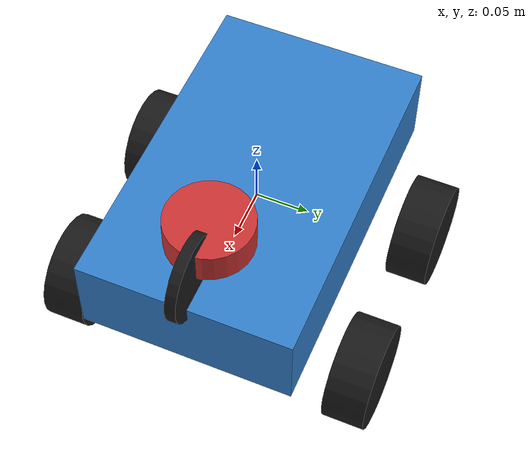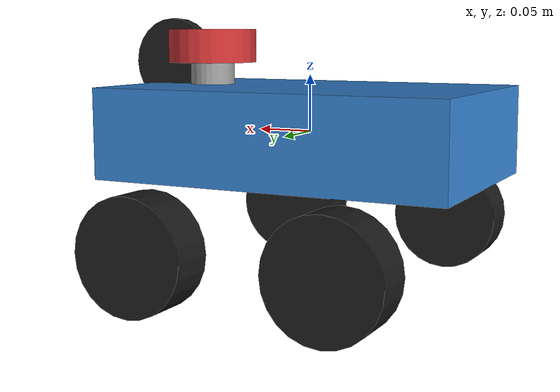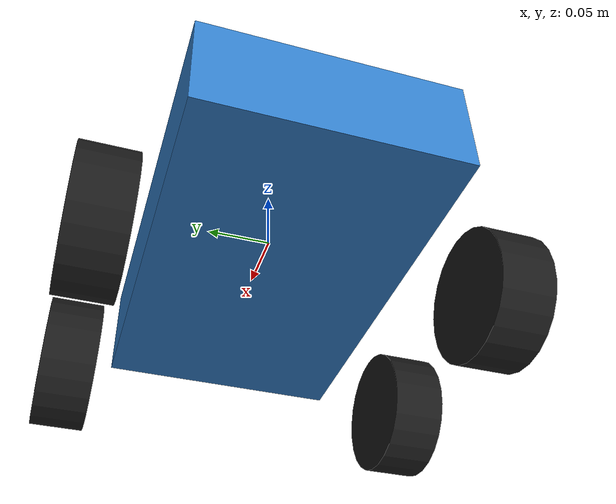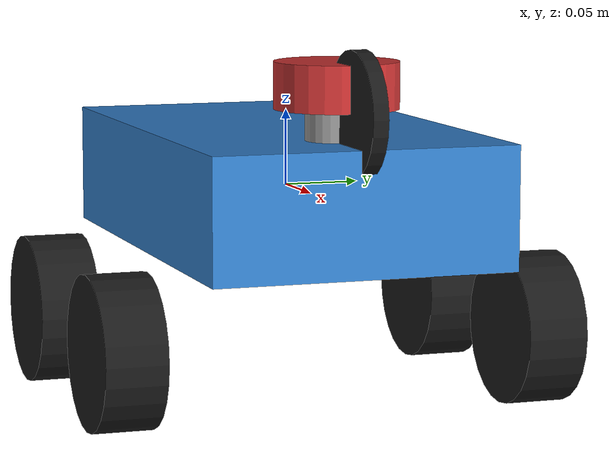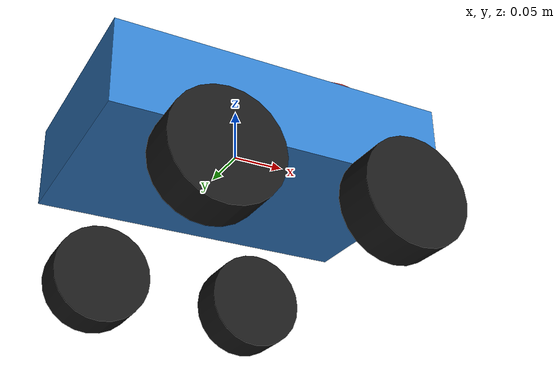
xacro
<?xml version="1.0" ?>
<robot xmlns:xacro="http://www.ros.org/wiki/xacro" name="ros_car">

  <xacro:property name="use_sim" value="true"/>

  <!-- ======== Materials ======== -->
  <material name="blue">  <color rgba="0.2 0.5 0.8 1.0"/></material>
  <material name="black"> <color rgba="0.1 0.1 0.1 1.0"/></material>
  <material name="gray">  <color rgba="0.6 0.6 0.6 1.0"/></material>
  <material name="red">   <color rgba="0.8 0.2 0.2 1.0"/></material>
  <material name="white"> <color rgba="0.9 0.9 0.9 1.0"/></material>

  <!--  BASE LINK (chassis)                                         -->
  <!--  Box: 0.32 (x) x 0.20 (y) x 0.08 (z)  mass=2.0              -->
  <link name="base_link">
    <visual>
      <geometry><box size="0.32 0.20 0.08"/></geometry>
      <origin rpy="0 0 0" xyz="0 0 0"/>
      <material name="blue"/>
    </visual>
    <collision>
      <geometry><box size="0.32 0.20 0.08"/></geometry>
      <origin rpy="0 0 0" xyz="0 0 0"/>
    </collision>
    <inertial>
      <mass value="2.0"/>
      <inertia ixx="0.00773" ixy="0" ixz="0" iyy="0.01813" iyz="0" izz="0.02373"/>
    </inertial>
  </link>

  <xacro:if value="${use_sim}">
  <gazebo reference="base_link">
    <mu1>0.5</mu1><mu2>0.5</mu2>
  </gazebo>
  </xacro:if>

  <!--  LASER SENSOR                                                -->
  <link name="laser_support">
    <visual>
      <geometry><cylinder length="0.05" radius="0.02"/></geometry>
      <origin rpy="0 0 0" xyz="0 0 0"/>
      <material name="gray"/>
    </visual>
    <collision>
      <geometry><cylinder length="0.05" radius="0.02"/></geometry>
      <origin rpy="0 0 0" xyz="0 0 0"/>
    </collision>
    <inertial>
      <mass value="0.05"/>
      <inertia ixx="1.54e-5" ixy="0" ixz="0" iyy="1.54e-5" iyz="0" izz="1.0e-5"/>
    </inertial>
  </link>

  <joint name="laser_support_joint" type="fixed">
    <parent link="base_link"/>
    <child  link="laser_support"/>
    <origin rpy="0 0 0" xyz="0.10 0 0.035"/>
  </joint>

  <link name="laser_link">
    <visual>
      <geometry><cylinder length="0.03" radius="0.04"/></geometry>
      <origin rpy="0 0 0" xyz="0 0 0"/>
      <material name="red"/>
    </visual>
    <collision>
      <geometry><cylinder length="0.03" radius="0.04"/></geometry>
      <origin rpy="0 0 0" xyz="0 0 0"/>
    </collision>
    <inertial>
      <mass value="0.1"/>
      <inertia ixx="4.75e-5" ixy="0" ixz="0" iyy="4.75e-5" iyz="0" izz="8.0e-5"/>
    </inertial>
  </link>

  <joint name="laser_joint" type="fixed">
    <parent link="laser_support"/>
    <child  link="laser_link"/>
    <origin rpy="0 0 0" xyz="0 0 0.04"/>
  </joint>

  <xacro:if value="${use_sim}">
  <gazebo reference="laser_link">
    <sensor name="laser" type="ray">
      <always_on>true</always_on>
      <visualize>true</visualize>
      <update_rate>20</update_rate>
      <ray>
        <scan>
          <horizontal>
            <samples>360</samples>
            <resolution>1</resolution>
            <min_angle>-3.14159</min_angle>
            <max_angle>3.14159</max_angle>
          </horizontal>
        </scan>
        <range>
          <min>0.1</min>
          <max>8.0</max>
          <resolution>0.01</resolution>
        </range>
        <noise>
          <type>gaussian</type>
          <mean>0.0</mean>
          <stddev>0.01</stddev>
        </noise>
      </ray>
      <plugin filename="libgazebo_ros_ray_sensor.so" name="gazebo_ros_laser">
        <ros><remapping>~/out:=scan</remapping></ros>
        <output_type>sensor_msgs/LaserScan</output_type>
        <frame_name>laser_link</frame_name>
      </plugin>
    </sensor>
  </gazebo>
  </xacro:if>

  <!--  IMU SENSOR                                                  -->
  <link name="imu_link">
    <visual>
      <geometry><box size="0.03 0.03 0.01"/></geometry>
      <origin rpy="0 0 0" xyz="0 0 0"/>
      <material name="gray"/>
    </visual>
    <collision>
      <geometry><box size="0.03 0.03 0.01"/></geometry>
      <origin rpy="0 0 0" xyz="0 0 0"/>
    </collision>
    <inertial>
      <mass value="0.02"/>
      <inertia ixx="1.67e-6" ixy="0" ixz="0" iyy="1.67e-6" iyz="0" izz="3.0e-6"/>
    </inertial>
  </link>

  <joint name="imu_joint" type="fixed">
    <parent link="base_link"/>
    <child  link="imu_link"/>
    <origin rpy="0 0 0" xyz="0 0 0.02"/>
  </joint>

  <xacro:if value="${use_sim}">
  <gazebo reference="imu_link">
    <sensor name="imu_sensor" type="imu">
      <always_on>true</always_on>
      <update_rate>50</update_rate>
      <visualize>true</visualize>
      <plugin filename="libgazebo_ros_imu_sensor.so" name="gazebo_ros_imu">
        <ros><remapping>~/out:=imu</remapping></ros>
        <frame_name>imu_link</frame_name>
      </plugin>
    </sensor>
  </gazebo>
  </xacro:if>

  <!--  DUMMY STEERING WHEEL (cosmetic)                             -->
  <link name="dummy_steering_wheel">
    <visual>
      <geometry><cylinder length="0.01" radius="0.04"/></geometry>
      <origin rpy="1.5708 0 0" xyz="0 0 0"/>
      <material name="black"/>
    </visual>
    <inertial>
      <mass value="0.01"/>
      <inertia ixx="1.0e-6" ixy="0" ixz="0" iyy="1.0e-6" iyz="0" izz="2.0e-6"/>
    </inertial>
  </link>

  <joint name="dummy_steering_wheel_joint" type="fixed">
    <parent link="base_link"/>
    <child  link="dummy_steering_wheel"/>
    <origin rpy="0 0 0" xyz="0.14 0 0.06"/>
  </joint>

  <!--  FRONT KNUCKLES (steering hubs)                              -->
  <link name="left_front_knuckle_link">
    <visual>
      <geometry><box size="0.02 0.02 0.02"/></geometry>
      <origin rpy="0 0 0" xyz="0 0 0"/>
      <material name="white"/>
    </visual>
    <inertial>
      <mass value="0.1"/>
      <inertia ixx="1.0e-5" ixy="0" ixz="0" iyy="1.0e-5" iyz="0" izz="1.0e-5"/>
    </inertial>
  </link>

  <link name="right_front_knuckle_link">
    <visual>
      <geometry><box size="0.02 0.02 0.02"/></geometry>
      <origin rpy="0 0 0" xyz="0 0 0"/>
      <material name="white"/>
    </visual>
    <inertial>
      <mass value="0.1"/>
      <inertia ixx="1.0e-5" ixy="0" ixz="0" iyy="1.0e-5" iyz="0" izz="1.0e-5"/>
    </inertial>
  </link>

  <joint name="left_front_steer_joint" type="revolute">
    <parent link="base_link"/>
    <child  link="left_front_knuckle_link"/>
    <origin rpy="0 0 0" xyz="0.085 0.14 -0.09"/>
    <axis   xyz="0 0 1"/>
    <limit  lower="-0.7" upper="0.7" effort="100" velocity="2.0"/>
  </joint>

  <joint name="right_front_steer_joint" type="revolute">
    <parent link="base_link"/>
    <child  link="right_front_knuckle_link"/>
    <origin rpy="0 0 0" xyz="0.085 -0.14 -0.09"/>
    <axis   xyz="0 0 1"/>
    <limit  lower="-0.7" upper="0.7" effort="100" velocity="2.0"/>
  </joint>

  <!--  WHEELS (4x)                                                 -->
  <!--  Cylinder: r=0.05, l=0.04, mass=0.2                          -->
  <!--  Rotated 90° around X so cylinder axis = Y (wheel axis)      -->
  <link name="left_front_link">
    <visual>
      <geometry><cylinder length="0.04" radius="0.05"/></geometry>
      <origin rpy="1.5708 0 0" xyz="0 0 0"/>
      <material name="black"/>
    </visual>
    <collision>
      <geometry><cylinder length="0.04" radius="0.05"/></geometry>
      <origin rpy="1.5708 0 0" xyz="0 0 0"/>
    </collision>
    <inertial>
      <mass value="0.2"/>
      <!-- cylinder axis = Y: ixx=izz=(1/12)m(3r^2+l^2), iyy=0.5mr^2 -->
      <inertia ixx="0.000152" ixy="0" ixz="0" iyy="0.00025" iyz="0" izz="0.000152"/>
    </inertial>
  </link>

  <link name="right_front_link">
    <visual>
      <geometry><cylinder length="0.04" radius="0.05"/></geometry>
      <origin rpy="1.5708 0 0" xyz="0 0 0"/>
      <material name="black"/>
    </visual>
    <collision>
      <geometry><cylinder length="0.04" radius="0.05"/></geometry>
      <origin rpy="1.5708 0 0" xyz="0 0 0"/>
    </collision>
    <inertial>
      <mass value="0.2"/>
      <inertia ixx="0.000152" ixy="0" ixz="0" iyy="0.00025" iyz="0" izz="0.000152"/>
    </inertial>
  </link>

  <link name="left_rear_link">
    <visual>
      <geometry><cylinder length="0.04" radius="0.05"/></geometry>
      <origin rpy="1.5708 0 0" xyz="0 0 0"/>
      <material name="black"/>
    </visual>
    <collision>
      <geometry><cylinder length="0.04" radius="0.05"/></geometry>
      <origin rpy="1.5708 0 0" xyz="0 0 0"/>
    </collision>
    <inertial>
      <mass value="0.2"/>
      <inertia ixx="0.000152" ixy="0" ixz="0" iyy="0.00025" iyz="0" izz="0.000152"/>
    </inertial>
  </link>

  <link name="right_rear_link">
    <visual>
      <geometry><cylinder length="0.04" radius="0.05"/></geometry>
      <origin rpy="1.5708 0 0" xyz="0 0 0"/>
      <material name="black"/>
    </visual>
    <collision>
      <geometry><cylinder length="0.04" radius="0.05"/></geometry>
      <origin rpy="1.5708 0 0" xyz="0 0 0"/>
    </collision>
    <inertial>
      <mass value="0.2"/>
      <inertia ixx="0.000152" ixy="0" ixz="0" iyy="0.00025" iyz="0" izz="0.000152"/>
    </inertial>
  </link>

  <!-- Front: wheel attached to knuckle via continuous roll joint (axis Y) -->
  <joint name="left_front_roll_joint" type="continuous">
    <parent link="left_front_knuckle_link"/>
    <child  link="left_front_link"/>
    <origin rpy="0 0 0" xyz="0 0 0"/>
    <axis   xyz="0 1 0"/>
    <limit  effort="100" velocity="5.0"/>
  </joint>

  <joint name="right_front_roll_joint" type="continuous">
    <parent link="right_front_knuckle_link"/>
    <child  link="right_front_link"/>
    <origin rpy="0 0 0" xyz="0 0 0"/>
    <axis   xyz="0 1 0"/>
    <limit  effort="100" velocity="5.0"/>
  </joint>

  <!-- Rear: wheel attached directly to base_link -->
  <joint name="left_rear_roll_joint" type="continuous">
    <parent link="base_link"/>
    <child  link="left_rear_link"/>
    <origin rpy="0 0 0" xyz="-0.085 0.14 -0.09"/>
    <axis   xyz="0 1 0"/>
    <limit  effort="100" velocity="5.0"/>
  </joint>

  <joint name="right_rear_roll_joint" type="continuous">
    <parent link="base_link"/>
    <child  link="right_rear_link"/>
    <origin rpy="0 0 0" xyz="-0.085 -0.14 -0.09"/>
    <axis   xyz="0 1 0"/>
    <limit  effort="100" velocity="5.0"/>
  </joint>

  <!-- Wheel friction for Gazebo -->
  <xacro:if value="${use_sim}">
  <gazebo reference="left_front_link">
    <mu1>1.0</mu1><mu2>1.0</mu2>
    <material>Gazebo/Black</material>
  </gazebo>
  <gazebo reference="right_front_link">
    <mu1>1.0</mu1><mu2>1.0</mu2>
    <material>Gazebo/Black</material>
  </gazebo>
  <gazebo reference="left_rear_link">
    <mu1>1.0</mu1><mu2>1.0</mu2>
    <material>Gazebo/Black</material>
  </gazebo>
  <gazebo reference="right_rear_link">
    <mu1>1.0</mu1><mu2>1.0</mu2>
    <material>Gazebo/Black</material>
  </gazebo>
  </xacro:if>

  <!--  ACKERMANN DRIVE CONTROLLER                                  -->
  <xacro:if value="${use_sim}">
  <gazebo>
    <plugin filename="libgazebo_ros_ackermann_drive.so" name="ackermann_controller">
      <update_rate>50</update_rate>

      <front_left_joint>left_front_roll_joint</front_left_joint>
      <front_right_joint>right_front_roll_joint</front_right_joint>
      <rear_left_joint>left_rear_roll_joint</rear_left_joint>
      <rear_right_joint>right_rear_roll_joint</rear_right_joint>
      <left_steering_joint>left_front_steer_joint</left_steering_joint>
      <right_steering_joint>right_front_steer_joint</right_steering_joint>

      <wheelbase>0.17</wheelbase>
      <track>0.28</track>
      <wheel_radius>0.05</wheel_radius>
      <max_steer>0.7</max_steer>
      <max_speed>2.0</max_speed>

      <left_steering_pid_gain>3.0 0.5 0.1</left_steering_pid_gain>
      <left_steering_i_range>-1.0 1.0</left_steering_i_range>
      <right_steering_pid_gain>3.0 0.5 0.1</right_steering_pid_gain>
      <right_steering_i_range>-1.0 1.0</right_steering_i_range>
      <linear_velocity_pid_gain>0.5 0.01 0.0</linear_velocity_pid_gain>
      <linear_velocity_i_range>-0.5 0.5</linear_velocity_i_range>

      <publish_odom>true</publish_odom>
      <publish_odom_tf>true</publish_odom_tf>
      <publish_wheel_tf>false</publish_wheel_tf>
      <publish_distance>true</publish_distance>

      <odometry_frame>odom</odometry_frame>
      <robot_base_frame>base_link</robot_base_frame>
    </plugin>
  </gazebo>
  </xacro:if>

</robot>
